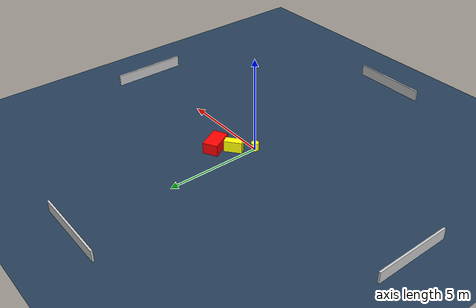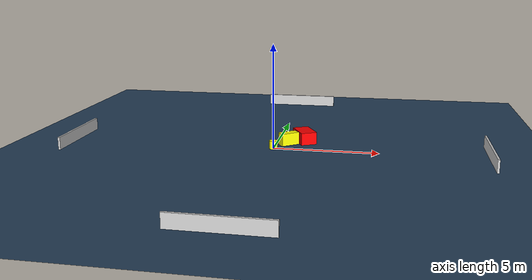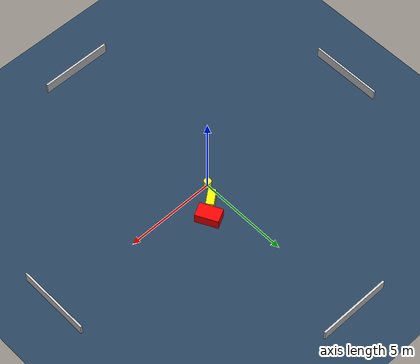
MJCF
<?xml version="1.0" ?>
<mujoco model="generated_environment">
  <option timestep="0.01" integrator="RK4" cone="elliptic"/>
  <default>
    <geom density="1"/>
  </default>
  <asset>
    <texture builtin="gradient" height="3072" name="skybox" rgb1="0.3 0.5 0.7" rgb2="0 0 0" type="skybox" width="512"/>
    <texture builtin="checker" height="300" name="groundplane" rgb1="0.2 0.3 0.4" rgb2="0.1 0.2 0.3" type="2d" width="300"/>
    <material name="groundplane" reflectance="0.2" texrepeat="5 5" texture="groundplane"/>
  </asset>
  <worldbody>
    <light dir="0 0 -1" directional="true" pos="0 0 1.5"/>
    <geom condim="3" friction="0.5 0.005 0.001" material="groundplane" name="floor" pos="0 0 0" size="0 0 0.05" type="plane"/>
    <body name="walls">
      <geom name="wall_1" condim="4" pos="-10.0 0.0 0.3" rgba="0.800000011920929 0.800000011920929 0.800000011920929 1.0" size="0.05 2.0 0.3" type="box"/>
      <geom name="wall_2" condim="4" pos="10.0 0.0 0.3" rgba="0.800000011920929 0.800000011920929 0.800000011920929 1.0" size="0.05 2.0 0.3" type="box"/>
      <geom name="wall_3" condim="4" pos="0.0 -10.0 0.3" rgba="0.800000011920929 0.800000011920929 0.800000011920929 1.0" size="2.0 0.05 0.3" type="box"/>
      <geom name="wall_4" condim="4" pos="0.0 10.0 0.3" rgba="0.800000011920929 0.800000011920929 0.800000011920929 1.0" size="2.0 0.05 0.3" type="box"/>
    </body>
    <body name="robot">
      <joint name="joint_x" type="slide" pos="0 0 0" axis="1 0 0"/>
      <joint name="joint_y" type="slide" pos="0 0 0" axis="0 1 0"/>
      <geom name="robot" type="cylinder" pos="0.0 0.0 0.2" size="0.2 0.2 0.0" mass="5.0" friction="1.0 0.005 0.0001" condim="4" rgba="1.0 1.0 0.0 1.0"/>
    </body>
    <body name="obstacle_1_movable">
      <geom name="obstacle_1_movable" condim="4" pos="0.6037919415462577 0.8771608918284707 0.3" euler="0 0 218.032081746144" friction="0.0 0.005 0.001" rgba="1.0 1.0 0.0 1.0" size="0.46330151270765346 0.20723215662231834 0.3" type="box" mass="0.1"/>
      <joint type="free"/>
    </body>
    <body name="obstacle_2_static">
      <geom name="obstacle_2_static" condim="4" pos="1.3139975019344508 1.4805242768734328 0.3" euler="0 0 297.5828628710582" friction="0.0 0.005 0.001" rgba="1.0 0.0 0.0 1.0" size="0.625165010269802 0.393281187495896 0.3" type="box"/>
    </body>
  </worldbody>
  <actuator>
    <motor name="actuator_x" joint="joint_x" gear="1" ctrlrange="-1 1"/>
    <motor name="actuator_y" joint="joint_y" gear="1" ctrlrange="-1 1"/>
  </actuator>
</mujoco>
